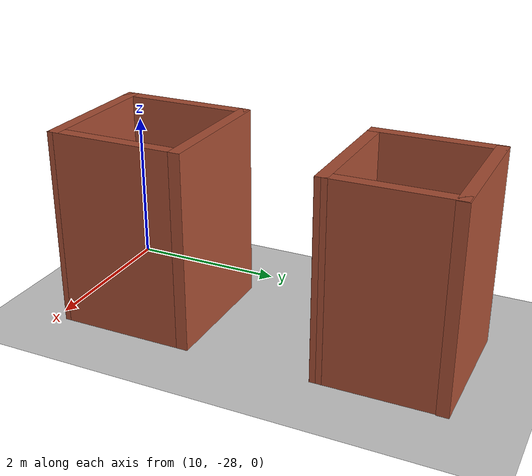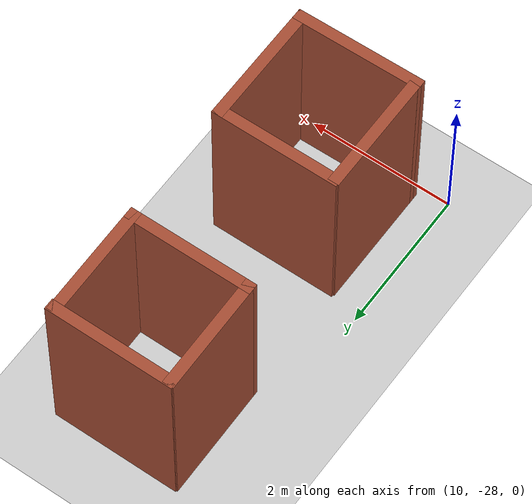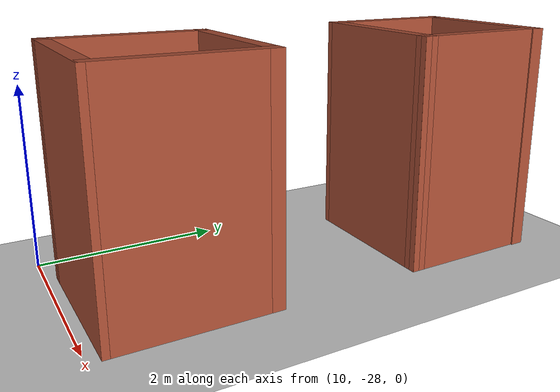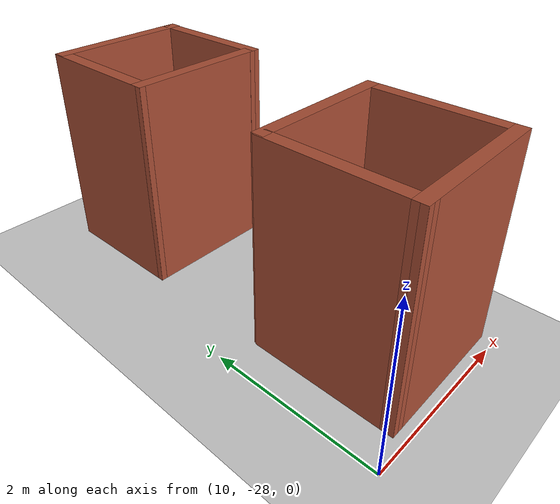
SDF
<sdf version="1.6">
 <world name="default">
  <model name="ground_plane">
   <static>1</static>
   <link name="link">
    <collision name="collision">
     <geometry><plane><normal>0 0 1</normal><size>100 100</size></plane></geometry>
     <surface><friction><ode><mu>100</mu><mu2>50</mu2></ode></friction></surface>
    </collision>
    <visual name="visual">
     <cast_shadows>0</cast_shadows>
     <geometry><plane><normal>0 0 1</normal><size>100 100</size></plane></geometry>
     <material>
      <script><uri>file://media/materials/scripts/gazebo.material</uri><name>Gazebo/Grey</name></script>
     </material>
    </visual>
   </link>
  </model>
  <model name="TwoShells_0">
   <pose>11.2648 -25.399 0 0 -0 0</pose>
   <link name="Wall_0">
    <collision name="Wall_0_Collision">
     <geometry><box><size>1.75 0.15 2.5</size></box></geometry>
     <pose>0 0 1.25 0 -0 0</pose>
    </collision>
    <visual name="Wall_0_Visual">
     <pose>0 0 1.25 0 -0 0</pose>
     <geometry><box><size>1.75 0.15 2.5</size></box></geometry>
     <material>
      <script><uri>file://media/materials/scripts/gazebo.material</uri><name>Gazebo/Bricks</name></script>
      <ambient>1 1 1 1</ambient>
     </material>
     <meta><layer>0</layer></meta>
    </visual>
    <pose>0.019959 -0.780076 0 0 -0 3.14159</pose>
   </link>
   <link name="Wall_1">
    <collision name="Wall_1_Collision">
     <geometry><box><size>1.75 0.15 2.5</size></box></geometry>
     <pose>0 0 1.25 0 -0 0</pose>
    </collision>
    <visual name="Wall_1_Visual">
     <pose>0 0 1.25 0 -0 0</pose>
     <geometry><box><size>1.75 0.15 2.5</size></box></geometry>
     <material>
      <script><uri>file://media/materials/scripts/gazebo.material</uri><name>Gazebo/Bricks</name></script>
      <ambient>1 1 1 1</ambient>
     </material>
     <meta><layer>0</layer></meta>
    </visual>
    <pose>-0.79525 -1.61049 0 0 0 -1.5708</pose>
   </link>
   <link name="Wall_10">
    <collision name="Wall_10_Collision">
     <geometry><box><size>1.75 0.15 2.5</size></box></geometry>
     <pose>0 0 1.25 0 -0 0</pose>
    </collision>
    <visual name="Wall_10_Visual">
     <pose>0 0 1.25 0 -0 0</pose>
     <geometry><box><size>1.75 0.15 2.5</size></box></geometry>
     <material>
      <script><uri>file://media/materials/scripts/gazebo.material</uri><name>Gazebo/Bricks</name></script>
      <ambient>1 1 1 1</ambient>
     </material>
     <meta><layer>0</layer></meta>
    </visual>
    <pose>-0.004674 2.4112 0 0 -0 3.14159</pose>
   </link>
   <link name="Wall_11">
    <collision name="Wall_11_Collision">
     <geometry><box><size>1.60654 0.15 2.5</size></box></geometry>
     <pose>0 0 1.25 0 -0 0</pose>
    </collision>
    <visual name="Wall_11_Visual">
     <pose>0 0 1.25 0 -0 0</pose>
     <geometry><box><size>1.60654 0.15 2.5</size></box></geometry>
     <material>
      <script><uri>file://media/materials/scripts/gazebo.material</uri><name>Gazebo/Bricks</name></script>
      <ambient>1 1 1 1</ambient>
     </material>
     <meta><layer>0</layer></meta>
    </visual>
    <pose>-0.812278 1.66776 0 0 0 -1.56035</pose>
   </link>
   <link name="Wall_2">
    <collision name="Wall_2_Collision">
     <geometry><box><size>1.76528 0.15 2.5</size></box></geometry>
     <pose>0 0 1.25 0 -0 0</pose>
    </collision>
    <visual name="Wall_2_Visual">
     <pose>0 0 1.25 0 -0 0</pose>
     <geometry><box><size>1.76528 0.15 2.5</size></box></geometry>
     <material>
      <script><uri>file://media/materials/scripts/gazebo.material</uri><name>Gazebo/Bricks</name></script>
      <ambient>1 1 1 1</ambient>
     </material>
     <meta><layer>0</layer></meta>
    </visual>
    <pose>0.012354 -2.40289 0 0 -0 0.009416</pose>
   </link>
   <link name="Wall_6">
    <collision name="Wall_6_Collision">
     <geometry><box><size>1.75 0.15 2.5</size></box></geometry>
     <pose>0 0 1.25 0 -0 0</pose>
    </collision>
    <visual name="Wall_6_Visual">
     <pose>0 0 1.25 0 -0 0</pose>
     <geometry><box><size>1.75 0.15 2.5</size></box></geometry>
     <material>
      <script><uri>file://media/materials/scripts/gazebo.material</uri><name>Gazebo/Bricks</name></script>
      <ambient>1 1 1 1</ambient>
     </material>
     <meta><layer>0</layer></meta>
    </visual>
    <pose>0.819959 -1.58008 0 0 -0 1.5708</pose>
   </link>
   <link name="Wall_8">
    <collision name="Wall_8_Collision">
     <geometry><box><size>1.75 0.15 2.5</size></box></geometry>
     <pose>0 0 1.25 0 -0 0</pose>
    </collision>
    <visual name="Wall_8_Visual">
     <pose>0 0 1.25 0 -0 0</pose>
     <geometry><box><size>1.75 0.15 2.5</size></box></geometry>
     <material>
      <script><uri>file://media/materials/scripts/gazebo.material</uri><name>Gazebo/Bricks</name></script>
      <ambient>1 1 1 1</ambient>
     </material>
     <meta><layer>0</layer></meta>
    </visual>
    <pose>-0.004674 0.939526 0 0 -0 0</pose>
   </link>
   <link name="Wall_9">
    <collision name="Wall_9_Collision">
     <geometry><box><size>1.60654 0.15 2.5</size></box></geometry>
     <pose>0 0 1.25 0 -0 0</pose>
    </collision>
    <visual name="Wall_9_Visual">
     <pose>0 0 1.25 0 -0 0</pose>
     <geometry><box><size>1.60654 0.15 2.5</size></box></geometry>
     <material>
      <script><uri>file://media/materials/scripts/gazebo.material</uri><name>Gazebo/Bricks</name></script>
      <ambient>1 1 1 1</ambient>
     </material>
     <meta><layer>0</layer></meta>
    </visual>
    <pose>0.787722 1.66776 0 0 -0 1.58124</pose>
   </link>
   <static>1</static>
  </model>
 </world>
</sdf>
